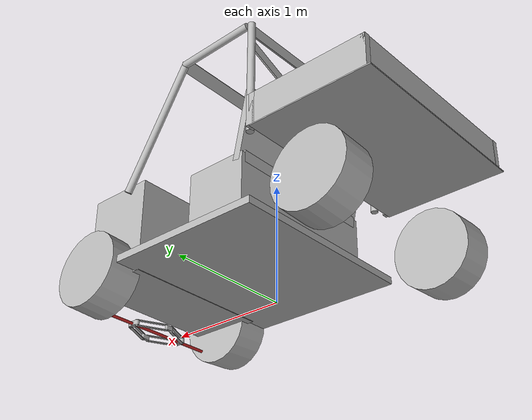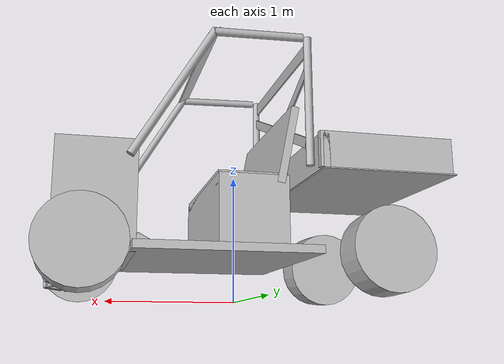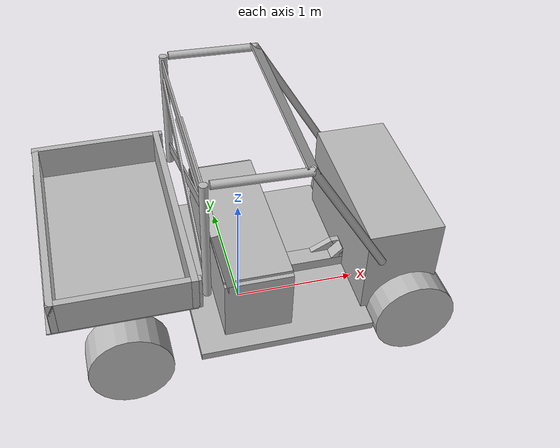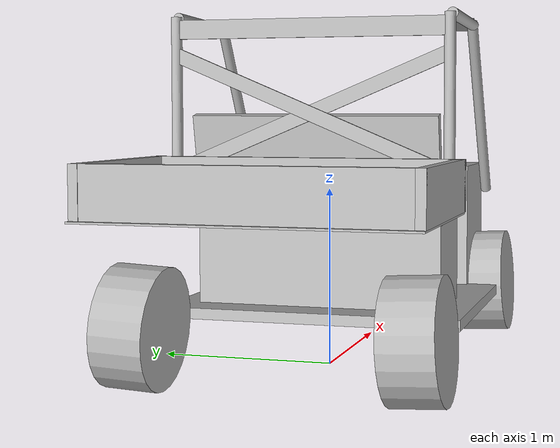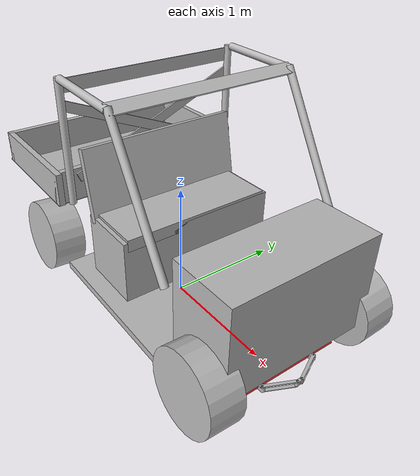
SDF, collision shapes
<?xml version="1.0" ?>
<sdf version="1.7">
  <model name="robot_manipulator">

    <include>
      <uri>model://gripper</uri>
      <pose>1.3 0 0.1 0 0 0</pose>
    </include>

    <include>
      <uri>model://rover</uri>
      <pose>0 0 0 0 0 0</pose>
    </include>

    <joint name="arm_gripper_joint" type="fixed">
      <parent>rover_base::chassis</parent>
      <child>simple_gripper::riser</child>
    </joint>

  </model>
</sdf>

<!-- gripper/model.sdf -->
<sdf version="1.6">
  <model name='gripper'>
    <static>False</static>
    <link name='left_long_joint'>
      <pose>0 0.25 0.019 -1.57 0 0</pose>
      <inertial>
        <pose>-0.000104 -0.000077 -0.0 0 0 0</pose>
        <mass>0.3186</mass>
        <inertia>
          <ixx>7.938e-05</ixx>
          <ixy>0</ixy>
          <ixz>0</ixz>
          <iyy>3.3715e-04</iyy>
          <iyz>0</iyz>
          <izz>3.3664e-04</izz>
        </inertia>
      </inertial>
      <collision name="collision">
        <geometry>
          <mesh>
            <uri>model://gripper/meshes/joint_long.dae</uri>
            <scale>1 1 1</scale>
          </mesh>
        </geometry>
        <surface>
          <contact>
            <collide_bitmask>0xffff</collide_bitmask>
          </contact>
          <friction>
            <ode>
              <mu>100</mu>
              <mu2>50</mu2>
            </ode>
          </friction>
        </surface>
      </collision>
      <visual name='visual'>
        <geometry>
          <mesh>
            <uri>model://gripper/meshes/joint_long.dae</uri>
            <scale>1 1 1</scale>
          </mesh>
        </geometry>
      </visual>
    </link>
    <link name='right_long_joint'>
      <pose>0 -0.25 0.019 -1.57 0 0</pose>
      <collision name="collision">
        <geometry>
          <mesh>
            <uri>model://gripper/meshes/joint_long.dae</uri>
            <scale>1 1 1</scale>
          </mesh>
        </geometry>
        <surface>
          <contact>
            <collide_bitmask>0xffff</collide_bitmask>
          </contact>
          <friction>
            <ode>
              <mu>100</mu>
              <mu2>50</mu2>
            </ode>
          </friction>
        </surface>
      </collision>
      <visual name='visual'>
        <geometry>
          <mesh>
            <uri>model://gripper/meshes/joint_long.dae</uri>
            <scale>1 1 1</scale>
          </mesh>
        </geometry>
      </visual>
      <inertial>
        <pose>-0.000104 -0.000077 -0.0 0 0 0</pose>
        <mass>0.3186</mass>
        <inertia>
          <ixx>7.938e-05</ixx>
          <ixy>0</ixy>
          <ixz>0</ixz>
          <iyy>3.3715e-04</iyy>
          <iyz>0</iyz>
          <izz>3.3664e-04</izz>
        </inertia>
      </inertial>
    </link>
    <link name='left_short_joint'>
      <pose>0.14 0 0 1.57 0 1.57</pose>
      <collision name="collision">
        <geometry>
          <mesh>
            <uri>model://gripper/meshes/joint_short.dae</uri>
            <scale>1 1 1</scale>
          </mesh>
        </geometry>
        <surface>
          <contact>
            <collide_bitmask>0xffff</collide_bitmask>
          </contact>
          <friction>
            <ode>
              <mu>100</mu>
              <mu2>50</mu2>
            </ode>
          </friction>
        </surface>
      </collision>
      <visual name='visual'>
        <geometry>
          <mesh>
            <uri>model://gripper/meshes/joint_short.dae</uri>
            <scale>1 1 1</scale>
          </mesh>
        </geometry>
      </visual>
      <inertial>
        <pose>0.0 0.01896 -0.000157 0 0 0</pose>
        <mass>0.1512</mass>
        <inertia>
          <ixx>2.689e-05</ixx>
          <ixy>-0</ixy>
          <ixz>-0</ixz>
          <iyy>6.696e-05</iyy>
          <iyz>0</iyz>
          <izz>7.741e-05</izz>
        </inertia>
      </inertial>
    </link>
    <link name='right_short_joint'>
      <pose>-0.14 0 0 1.57 0 1.57</pose>
      <collision name="collision">
        <geometry>
          <mesh>
            <uri>model://gripper/meshes/joint_short.dae</uri>
            <scale>1 1 1</scale>
          </mesh>
        </geometry>
        <surface>
          <contact>
            <collide_bitmask>0xffff</collide_bitmask>
          </contact>
          <friction>
            <ode>
              <mu>100</mu>
              <mu2>50</mu2>
            </ode>
          </friction>
        </surface>
      </collision>
      <visual name='visual'>
        <geometry>
          <mesh>
            <uri>model://gripper/meshes/joint_short.dae</uri>
            <scale>1 1 1</scale>
          </mesh>
        </geometry>
      </visual>
      <inertial>
        <pose>0.0 0.01896 -0.000157 0 0 0</pose>
        <mass>0.1512</mass>
        <inertia>
          <ixx>2.689e-05</ixx>
          <ixy>-0</ixy>
          <ixz>-0</ixz>
          <iyy>6.696e-05</iyy>
          <iyz>0</iyz>
          <izz>7.741e-05</izz>
        </inertia>
      </inertial>
    </link>
    <link name='flat_plate1'>
      <pose>0.0456 0.2565 0.038 1.57 0 -1.132</pose>
      <collision name="collision">
        <geometry>
          <mesh>
            <uri>model://gripper/meshes/flat_plate.dae</uri>
            <scale>1 1 1</scale>
          </mesh>
        </geometry>
        <surface>
          <contact>
            <collide_bitmask>0xffff</collide_bitmask>
          </contact>
          <friction>
            <ode>
              <mu>100</mu>
              <mu2>50</mu2>
            </ode>
          </friction>
        </surface>
      </collision>
      <visual name='visual'>
        <geometry>
          <mesh>
            <uri>model://gripper/meshes/flat_plate.dae</uri>
            <scale>1 1 1</scale>
          </mesh>
        </geometry>
      </visual>
      <inertial>
        <pose>0.125 0.00325 0.012500 0 0 0</pose>
        <mass>0.0651</mass>
        <inertia>
          <ixx>3.689e-06</ixx>
          <ixy>-0</ixy>
          <ixz>-0</ixz>
          <iyy>3.797e-04</iyy>
          <iyz>0</iyz>
          <izz>3.764e-04</izz>
        </inertia>
      </inertial>
    </link>
    <link name='flat_plate2'>
      <pose>-0.1289 -0.02 0.038 1.57 0 -1.132</pose>
      <collision name="collision">
        <geometry>
          <mesh>
            <uri>model://gripper/meshes/flat_plate.dae</uri>
            <scale>1 1 1</scale>
          </mesh>
        </geometry>
        <surface>
          <contact>
            <collide_bitmask>0xffff</collide_bitmask>
          </contact>
          <friction>
            <ode>
              <mu>100</mu>
              <mu2>50</mu2>
            </ode>
          </friction>
        </surface>
      </collision>
      <visual name='visual'>
        <geometry>
          <mesh>
            <uri>model://gripper/meshes/flat_plate.dae</uri>
            <scale>1 1 1</scale>
          </mesh>
        </geometry>
      </visual>
      <inertial>
        <pose>0.125 0.00325 0.012500 0 0 0</pose>
        <mass>0.0651</mass>
        <inertia>
          <ixx>3.689e-06</ixx>
          <ixy>-0</ixy>
          <ixz>-0</ixz>
          <iyy>3.797e-04</iyy>
          <iyz>0</iyz>
          <izz>3.764e-04</izz>
        </inertia>
      </inertial>
    </link>
    <link name='flat_plate3'>
      <pose>-0.1515 0.031 0.038 1.57 0 1.132</pose>
      <collision name="collision">
        <geometry>
          <mesh>
            <uri>model://gripper/meshes/flat_plate.dae</uri>
            <scale>1 1 1</scale>
          </mesh>
        </geometry>
        <surface>
          <contact>
            <collide_bitmask>0xffff</collide_bitmask>
          </contact>
          <friction>
            <ode>
              <mu>100</mu>
              <mu2>50</mu2>
            </ode>
          </friction>
        </surface>
      </collision>
      <visual name='visual'>
        <geometry>
          <mesh>
            <uri>model://gripper/meshes/flat_plate.dae</uri>
            <scale>1 1 1</scale>
          </mesh>
        </geometry>
      </visual>
      <inertial>
        <pose>0.125 0.00325 0.012500 0 0 0</pose>
        <mass>0.0651</mass>
        <inertia>
          <ixx>3.689e-06</ixx>
          <ixy>-0</ixy>
          <ixz>-0</ixz>
          <iyy>3.797e-04</iyy>
          <iyz>0</iyz>
          <izz>3.764e-04</izz>
        </inertia>
      </inertial>
    </link>
    <link name='flat_plate4'>
      <pose>0.022 -0.245 0.038 1.57 0 1.132</pose>
      <collision name="collision">
        <geometry>
          <mesh>
            <uri>model://gripper/meshes/flat_plate.dae</uri>
            <scale>1 1 1</scale>
          </mesh>
        </geometry>
        <surface>
          <contact>
            <collide_bitmask>0xffff</collide_bitmask>
          </contact>
          <friction>
            <ode>
              <mu>100</mu>
              <mu2>50</mu2>
            </ode>
          </friction>
        </surface>
      </collision>
      <visual name='visual'>
        <geometry>
          <mesh>
            <uri>model://gripper/meshes/flat_plate.dae</uri>
            <scale>1 1 1</scale>
          </mesh>
        </geometry>
      </visual>
      <inertial>
        <pose>0.125 0.00325 0.012500 0 0 0</pose>
        <mass>0.0651</mass>
        <inertia>
          <ixx>3.689e-06</ixx>
          <ixy>-0</ixy>
          <ixz>-0</ixz>
          <iyy>3.797e-04</iyy>
          <iyz>0</iyz>
          <izz>3.764e-04</izz>
        </inertia>
      </inertial>
    </link>

    <link name='flat_plate5'>
      <pose>0.0456 0.2565 -0.007 1.57 0 -1.132</pose>
      <collision name="collision">
        <geometry>
          <mesh>
            <uri>model://gripper/meshes/flat_plate.dae</uri>
            <scale>1 1 1</scale>
          </mesh>
        </geometry>
        <surface>
          <contact>
            <collide_bitmask>0xffff</collide_bitmask>
          </contact>
          <friction>
            <ode>
              <mu>100</mu>
              <mu2>50</mu2>
            </ode>
          </friction>
        </surface>
      </collision>
      <visual name='visual'>
        <geometry>
          <mesh>
            <uri>model://gripper/meshes/flat_plate.dae</uri>
            <scale>1 1 1</scale>
          </mesh>
        </geometry>
      </visual>
      <inertial>
        <pose>0.125 0.00325 0.012500 0 0 0</pose>
        <mass>0.0651</mass>
        <inertia>
          <ixx>3.689e-06</ixx>
          <ixy>-0</ixy>
          <ixz>-0</ixz>
          <iyy>3.797e-04</iyy>
          <iyz>0</iyz>
          <izz>3.764e-04</izz>
        </inertia>
      </inertial>
    </link>
    <link name='flat_plate6'>
      <pose>-0.1289 -0.02 -0.007 1.57 0 -1.132</pose>
      <collision name="collision">
        <geometry>
          <mesh>
            <uri>model://gripper/meshes/flat_plate.dae</uri>
            <scale>1 1 1</scale>
          </mesh>
        </geometry>
        <surface>
          <contact>
            <collide_bitmask>0xffff</collide_bitmask>
          </contact>
          <friction>
            <ode>
              <mu>100</mu>
              <mu2>50</mu2>
            </ode>
          </friction>
        </surface>
      </collision>
      <visual name='visual'>
        <geometry>
          <mesh>
            <uri>model://gripper/meshes/flat_plate.dae</uri>
            <scale>1 1 1</scale>
          </mesh>
        </geometry>
      </visual>
      <inertial>
        <pose>0.125 0.00325 0.012500 0 0 0</pose>
        <mass>0.0651</mass>
        <inertia>
          <ixx>3.689e-06</ixx>
          <ixy>-0</ixy>
          <ixz>-0</ixz>
          <iyy>3.797e-04</iyy>
          <iyz>0</iyz>
          <izz>3.764e-04</izz>
        </inertia>
      </inertial>
    </link>
    <link name='flat_plate7'>
      <pose>-0.1515 0.031 -0.007 1.57 0 1.132</pose>
      <collision name="collision">
        <geometry>
          <mesh>
            <uri>model://gripper/meshes/flat_plate.dae</uri>
            <scale>1 1 1</scale>
          </mesh>
        </geometry>
        <surface>
          <contact>
            <collide_bitmask>0xffff</collide_bitmask>
          </contact>
          <friction>
            <ode>
              <mu>100</mu>
              <mu2>50</mu2>
            </ode>
          </friction>
        </surface>
      </collision>
      <visual name='visual'>
        <geometry>
          <mesh>
            <uri>model://gripper/meshes/flat_plate.dae</uri>
            <scale>1 1 1</scale>
          </mesh>
        </geometry>
      </visual>
      <inertial>
        <pose>0.125 0.00325 0.012500 0 0 0</pose>
        <mass>0.0651</mass>
        <inertia>
          <ixx>3.689e-06</ixx>
          <ixy>-0</ixy>
          <ixz>-0</ixz>
          <iyy>3.797e-04</iyy>
          <iyz>0</iyz>
          <izz>3.764e-04</izz>
        </inertia>
      </inertial>
    </link>
    <link name='flat_plate8'>
      <pose>0.022 -0.245 -0.007 1.57 0 1.132</pose>
      <collision name="collision">
        <geometry>
          <mesh>
            <uri>model://gripper/meshes/flat_plate.dae</uri>
            <scale>1 1 1</scale>
          </mesh>
        </geometry>
        <surface>
          <contact>
            <collide_bitmask>0xffff</collide_bitmask>
          </contact>
          <friction>
            <ode>
              <mu>100</mu>
              <mu2>50</mu2>
            </ode>
          </friction>
        </surface>
      </collision>
      <visual name='visual'>
        <geometry>
          <mesh>
            <uri>model://gripper/meshes/flat_plate.dae</uri>
            <scale>1 1 1</scale>
          </mesh>
        </geometry>
      </visual>
      <inertial>
        <pose>0.125 0.00325 0.012500 0 0 0</pose>
        <mass>0.0651</mass>
        <inertia>
          <ixx>3.689e-06</ixx>
          <ixy>-0</ixy>
          <ixz>-0</ixz>
          <iyy>3.797e-04</iyy>
          <iyz>0</iyz>
          <izz>3.764e-04</izz>
        </inertia>
      </inertial>
    </link>

    <link name='screw_rod'>
      <pose>-0.00015 -0.02 0.0153 0 1.57 1.57 </pose>
      <collision name="collision">
        <geometry>
          <cylinder>
            <radius>0.012</radius>
            <length>1</length>
          </cylinder>
        </geometry>
      </collision>
      <visual name="visual">
        <material>
          <script>
            <name>Gazebo/Red</name>
            <uri>file://media/materials/scripts/gazebo.material</uri>
          </script>
          <shader type='pixel'/>
        </material>
        <geometry>
          <cylinder>
            <radius>0.012</radius>
            <length>0.7</length>
          </cylinder>
        </geometry>
      </visual>
      <inertial>
        <pose>0 0 0.32263 0 1.57 0</pose>
        <mass>1.29</mass>
        <inertia>
          <ixx>1.8357e-04</ixx>
          <ixy>-0</ixy>
          <ixz>-0</ixz>
          <iyy>8.006e-02</iyy>
          <iyz>0</iyz>
          <izz>8.006e-02</izz>
        </inertia>
      </inertial>
    </link>

    <joint name="j1" type="revolute">
      <pose> 0.25 0 0.01 0 0 0</pose>
      <child>flat_plate1</child>
      <parent>left_short_joint</parent>
      <axis>
        <limit>
          <lower>-0.5</lower>
          <upper>0.1</upper>
        </limit>
        <xyz>0 1 0</xyz>
      </axis>
    </joint>
    <joint name="j2" type="revolute">
      <pose> 0 0 0.01 0 0 0</pose>
      <child>flat_plate1</child>
      <parent>left_long_joint</parent>
      <axis>
        <limit>
          <lower>-0.5</lower>
          <upper>0.1</upper>
        </limit>
        <xyz>0 1 0</xyz>
      </axis>
    </joint>
    <joint name="j3" type="revolute">
      <pose> 0 0 0.01 0 0 0</pose>
      <child>flat_plate2</child>
      <parent>right_short_joint</parent>
      <axis>
        <limit>
          <lower>-0.5</lower>
          <upper>0.1</upper>
        </limit>
        <xyz>0 1 0</xyz>
      </axis>
    </joint>
    <joint name="j4" type="revolute">
      <pose> 0.25 0 0.01 0 0 0</pose>
      <child>flat_plate2</child>
      <parent>right_long_joint</parent>
      <axis>
        <limit>
          <lower>-0.5</lower>
          <upper>0.1</upper>
        </limit>
        <xyz>0 1 0</xyz>
      </axis>
    </joint>
    <joint name="j5" type="revolute">
      <pose> 0 0 0.01 0 0 0</pose>
      <child>flat_plate3</child>
      <parent>right_short_joint</parent>
      <axis>
        <limit>
          <lower>-0.5</lower>
          <upper>0.1</upper>
        </limit>
        <xyz>0 1 0</xyz>
      </axis>
    </joint>
    <joint name="j6" type="revolute">
      <pose> 0.25 0 0.01 0 0 0</pose>
      <child>flat_plate3</child>
      <parent>left_long_joint</parent>
      <axis>
        <limit>
          <lower>-0.5</lower>
          <upper>0.1</upper>
        </limit>
        <xyz>0 1 0</xyz>
      </axis>
    </joint>
    <joint name="j7" type="revolute">
      <pose> 0.25 0 0.01 0 0 0</pose>
      <child>flat_plate4</child>
      <parent>left_short_joint</parent>
      <axis>
        <limit>
          <lower>-0.5</lower>
          <upper>0.1</upper>
        </limit>
        <xyz>0 1 0</xyz>
      </axis>
    </joint>
    <joint name="j8" type="revolute">
      <pose> 0 0 0.01 0 0 0</pose>
      <child>flat_plate4</child>
      <parent>right_long_joint</parent>
      <axis>
        <limit>
          <lower>-0.5</lower>
          <upper>0.1</upper>
        </limit>
        <xyz>0 1 0</xyz>
      </axis>
    </joint>

    <joint name="j9" type="revolute">
      <pose> 0.25 0 0.01 0 0 0</pose>
      <child>flat_plate5</child>
      <parent>left_short_joint</parent>
      <axis>
        <limit>
          <lower>-0.5</lower>
          <upper>0.1</upper>
        </limit>
        <xyz>0 -1 0</xyz>
      </axis>
    </joint>
    <joint name="j10" type="revolute">
      <pose> 0 0 0.01 0 0 0</pose>
      <child>flat_plate5</child>
      <parent>left_long_joint</parent>
      <axis>
        <limit>
          <lower>-0.5</lower>
          <upper>0.1</upper>
        </limit>
        <xyz>0 -1 0</xyz>
      </axis>
    </joint>
    <joint name="j11" type="revolute">
      <pose> 0 0 0.01 0 0 0</pose>
      <child>flat_plate6</child>
      <parent>right_short_joint</parent>
      <axis>
        <limit>
          <lower>-0.5</lower>
          <upper>0.1</upper>
        </limit>
        <xyz>0 -1 0</xyz>
      </axis>
    </joint>
    <joint name="j12" type="revolute">
      <pose> 0.25 0 0.01 0 0 0</pose>
      <child>flat_plate6</child>
      <parent>right_long_joint</parent>
      <axis>
        <limit>
          <lower>-0.5</lower>
          <upper>0.1</upper>
        </limit>
        <xyz>0 -1 0</xyz>
      </axis>
    </joint>
    <joint name="j13" type="revolute">
      <pose> 0 0 0.01 0 0 0</pose>
      <child>flat_plate7</child>
      <parent>right_short_joint</parent>
      <axis>
        <limit>
          <lower>-0.5</lower>
          <upper>0.1</upper>
        </limit>
        <xyz>0 -1 0</xyz>
      </axis>
    </joint>
    <joint name="j14" type="revolute">
      <pose> 0.25 0 0.01 0 0 0</pose>
      <child>flat_plate7</child>
      <parent>left_long_joint</parent>
      <axis>
        <limit>
          <lower>-0.5</lower>
          <upper>0.1</upper>
        </limit>
        <xyz>0 -1 0</xyz>
      </axis>
    </joint>
    <joint name="j15" type="revolute">
      <pose> 0.25 0 0.01 0 0 0</pose>
      <child>flat_plate8</child>
      <parent>left_short_joint</parent>
      <axis>
        <limit>
          <lower>-0.5</lower>
          <upper>0.1</upper>
        </limit>
        <xyz>0 -1 0</xyz>
      </axis>
    </joint>
    <joint name="j16" type="revolute">
      <pose> 0 0 0.01 0 0 0</pose>
      <child>flat_plate8</child>
      <parent>right_long_joint</parent>
      <axis>
        <limit>
          <lower>-0.5</lower>
          <upper>0.1</upper>
        </limit>
        <xyz>0 -1 0</xyz>
      </axis>
    </joint>
    <joint name="piston_joint_1" type ="screw">
      <pose>0 0.004 0 0 0 0</pose>
      <parent>screw_rod</parent>
      <child>right_long_joint</child>
      <axis>
        <xyz>0 1 0</xyz>
      </axis>
      <thread_pitch>100</thread_pitch>
    </joint>

    <joint name="piston_joint_2" type ="screw">
      <pose>0 0.004 0 0 0 0</pose>
      <parent>screw_rod</parent>
      <child>left_long_joint</child>
      <axis>
        <xyz>0 1 0</xyz>
      </axis>
      <thread_pitch>-100</thread_pitch>
    </joint>

    <plugin name="gripper_plugin" filename="libiarc_gripper_plugin.so">
      <namespace>firefly</namespace>
      <link_name>screw_rod</link_name>
      <torque_magnitude>1.5</torque_magnitude>
    </plugin>
  </model>
</sdf>

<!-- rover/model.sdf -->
<sdf version="1.5">
  <model name="rover">
    <static>false</static>
    <link name="base_link">
      <inertial>
        <!-- subtracted wheel weights from dry weight of 771 kg -->
        <!-- http://www.polaris.com/en-us/ranger-utv/side-by-sides/ranger-ev/specifications -->
        <mass>720.0</mass>
        <inertia>
          <ixx>140</ixx>
          <ixy>0.0</ixy>
          <iyy>550</iyy>
          <ixz>0.0</ixz>
          <iyz>0.0</iyz>
          <izz>550</izz>
        </inertia>
        <!-- chassis c.o.g. near lateral/longitudinal center, height of 0.4 m -->
        <pose>0.1 0 0.4 0 0 0</pose>
      </inertial>
      <visual name="visual">
        <pose>0 0 0 0 0 -1.570796</pose>
        <geometry>
          <mesh>
            <uri>model://rover/meshes/polaris.dae</uri>
            <submesh>
              <name>Body</name>
              <center>false</center>
            </submesh>
          </mesh>
        </geometry>
        <material>
          <script>
            <uri>model://rover/materials/scripts</uri>
            <uri>model://rover/materials/textures</uri>
            <name>PolarisXP900/Diffuse</name>
          </script>
        </material>
      </visual>
      <collision name="base_link_bottom">
        <pose>0.2 0.0 0.335 0 0 0</pose>
        <geometry>
          <box>
            <size>1.34 1.65746 0.06</size>
          </box>
        </geometry>
      </collision>
      <collision name="cargo_bottom">
        <pose>-1.0 0.0 0.921 0.0 0.0 0.0</pose>
        <geometry>
          <box>
            <size>1.04609 1.6998 0.01</size>
          </box>
        </geometry>
      </collision>
      <collision name="cargo_front">
        <pose>-0.495 0.0 1.06 0.0 0.0 0.0</pose>
        <geometry>
          <box>
            <size>0.05 1.69982 0.27</size>
          </box>
        </geometry>
      </collision>
      <collision name="cargo_back">
        <pose>-1.465 0.0 1.06 0.0 0.0 0.0</pose>
        <geometry>
          <box>
            <size>0.05 1.69982 0.27</size>
          </box>
        </geometry>
      </collision>
      <collision name="cargo_left">
        <pose>-0.97 0.82491 1.06 0.0 0.0 0.0</pose>
        <geometry>
          <box>
            <size>1.04609 0.05 0.27</size>
          </box>
        </geometry>
      </collision>
      <collision name="cargo_right">
        <pose>-0.97 -0.82491 1.06 0.0 0.0 0.0</pose>
        <geometry>
          <box>
            <size>1.04609 0.05 0.27</size>
          </box>
        </geometry>
      </collision>
      <collision name="seat">
        <pose>0.0 0.0 0.62 0 0 0</pose>
        <geometry>
          <box>
            <size>0.52167 1.37206 0.53369</size>
          </box>
        </geometry>
        <surface>
          <contact>
            <ode>
              <min_depth>0.01</min_depth>
            </ode>
          </contact>
        </surface>
      </collision>
      <collision name="mud_seat">
        <pose>0.0 0.0 0.86 0 0 0</pose>
        <geometry>
          <box>
            <size>0.52167 1.30 0.1</size>
          </box>
        </geometry>
        <surface>
          <contact>
            <collide_without_contact>true</collide_without_contact>
          </contact>
        </surface>
      </collision>
      <sensor name="seat_contact" type="contact">
        <always_on>true</always_on>
        <update_rate>1000</update_rate>
        <contact>
          <collision>mud_seat</collision>
        </contact>
      </sensor>
      <collision name="seat_back">
        <pose>-0.26 0.0 1.125 0.0 -0.2 0.0</pose>
        <geometry>
          <box>
            <size>0.06 1.37206 0.6</size>
          </box>
        </geometry>
      </collision>
      <collision name="engine">
        <pose>1.12 0.0 0.7 0.0 0.0 0.0</pose>
        <geometry>
          <box>
            <size>0.58 1.3 0.8</size>
          </box>
        </geometry>
      </collision>
      <collision name="rollcage_top_left">
        <pose>-0.02 0.76 1.936 0 1.60 0</pose>
        <geometry>
          <cylinder>
            <radius>0.03</radius>
            <length>0.68</length>
          </cylinder>
        </geometry>
      </collision>
      <collision name="rollcage_top_right">
        <pose>-0.02 -0.76 1.936 0 1.60 0</pose>
        <geometry>
          <cylinder>
            <radius>0.03</radius>
            <length>0.68</length>
          </cylinder>
        </geometry>
      </collision>
      <collision name="rollcage_top_front">
        <pose>0.315 0.0 1.93 0 -1.0 0</pose>
        <geometry>
          <box>
            <size>0.01299 1.54 0.10226</size>
          </box>
        </geometry>
      </collision>
      <collision name="rollcage_top_back">
        <pose>-0.410 0.0 1.88 0 0 0</pose>
        <geometry>
          <box>
            <size>0.01299 1.54 0.10226</size>
          </box>
        </geometry>
      </collision>
      <collision name="rollcage_front_left">
        <pose>0.602 0.755 1.45 0 -0.54 0</pose>
        <geometry>
          <cylinder>
            <radius>0.03</radius>
            <length>1.15</length>
          </cylinder>
        </geometry>
      </collision>
      <collision name="rollcage_front_right">
        <pose>0.602 -0.755 1.45 0 -0.54 0</pose>
        <geometry>
          <cylinder>
            <radius>0.03</radius>
            <length>1.15</length>
          </cylinder>
        </geometry>
      </collision>
      <collision name="rollcage_back_left">
        <pose>-0.4 0.755 1.45 0 0 0</pose>
        <geometry>
          <cylinder>
            <radius>0.03</radius>
            <length>1.00</length>
          </cylinder>
        </geometry>
      </collision>
      <collision name="rollcage_back_right">
        <pose>-0.4 -0.755 1.45 0 0 0</pose>
        <geometry>
          <cylinder>
            <radius>0.03</radius>
            <length>1.00</length>
          </cylinder>
        </geometry>
      </collision>
      <collision name="rollcage_X_1">
        <pose>-0.411 0.04 1.445 0.397 0 0</pose>
        <geometry>
          <box>
            <size>0.01392 1.557245 0.078</size>
          </box>
        </geometry>
      </collision>
      <collision name="rollcage_X_2">
        <pose>-0.40 -0.04 1.445 -0.397 0 0</pose>
        <geometry>
          <box>
            <size>0.01392 1.557245 0.078</size>
          </box>
        </geometry>
      </collision>
      <collision name="central_hump1_collision">
        <pose>0.55 -0.1 0.4 0 0 0</pose>
        <geometry>
          <box>
            <size>0.6 0.15 0.1</size>
          </box>
        </geometry>
      </collision>
      <collision name="central_hump2_collision">
        <pose>0.7 -0.05 0.45 0 -0.5 0</pose>
        <geometry>
          <box>
            <size>0.20 0.05 0.1</size>
          </box>
        </geometry>
      </collision>
      <collision name="central_hump3_collision">
        <pose>0.798 -0.125 0.478 0 -0.8 0</pose>
        <geometry>
          <box>
            <size>0.129 0.1 0.05</size>
          </box>
        </geometry>
      </collision>
      <collision name="central_hump4_collision">
        <pose>0.8135 -0.05 0.45 0 0 0</pose>
        <geometry>
          <box>
            <size>0.10 0.05 0.1835</size>
          </box>
        </geometry>
      </collision>
      <collision name="central_hump5_collision">
        <pose>0.84 -0.125 0.45 0 0 0</pose>
        <geometry>
          <box>
            <size>0.03 0.1 0.1835</size>
          </box>
        </geometry>
      </collision>
      <collision name="central_hump6_collision">
        <pose>0.82 -0.125 0.475 0 0 0</pose>
        <geometry>
          <box>
            <size>0.03 0.1 0.05</size>
          </box>
        </geometry>
      </collision>
      <visual name="cargo_visual">
        <pose>-1.0 0 1.03230 0 0 -1.5707</pose>
        <geometry>
          <mesh>
            <uri>model://rover/meshes/polaris.dae</uri>
            <submesh>
              <name>Bed</name>
              <center>true</center>
            </submesh>
          </mesh>
        </geometry>
        <material>
          <script>
            <uri>model://rover/materials/scripts</uri>
            <uri>model://rover/materials/textures</uri>
            <name>PolarisXP900/Diffuse</name>
          </script>
        </material>
      </visual>
      <visual name="tailgate_visual">
        <pose>-1.492 0 1.03 0 0 -1.5707</pose>
        <geometry>
          <mesh>
            <uri>model://rover/meshes/polaris.dae</uri>
            <submesh>
              <name>Tail_Gate</name>
              <center>true</center>
            </submesh>
          </mesh>
        </geometry>
        <material>
          <script>
            <uri>model://rover/materials/scripts</uri>
            <uri>model://rover/materials/textures</uri>
            <name>PolarisXP900/Diffuse</name>
          </script>
        </material>
      </visual>
      <visual name="front_left_brake_visual">
        <pose>1.12 -0.57488 0.35516 3.1415 0 1.5707</pose>
        <geometry>
          <mesh>
            <uri>model://rover/meshes/polaris.dae</uri>
            <submesh>
              <name>Brake_Front_Left</name>
              <center>true</center>
            </submesh>
          </mesh>
        </geometry>
        <material>
          <script>
            <uri>model://rover/materials/scripts</uri>
            <uri>model://rover/materials/textures</uri>
            <name>PolarisXP900/Diffuse</name>
          </script>
        </material>
      </visual>
      <visual name="front_right_brake_visual">
        <pose>1.12 0.57488 0.35516 3.1415 0 1.5707</pose>
        <geometry>
          <mesh>
            <uri>model://rover/meshes/polaris.dae</uri>
            <submesh>
              <name>Brake_Front_Right</name>
              <center>true</center>
            </submesh>
          </mesh>
        </geometry>
        <material>
          <script>
            <uri>model://rover/materials/scripts</uri>
            <uri>model://rover/materials/textures</uri>
            <name>PolarisXP900/Diffuse</name>
          </script>
        </material>
      </visual>
      <visual name="central_hump1">
        <pose>0.55 -0.1 0.4 0 0 0</pose>
        <geometry>
          <box>
            <size>0.6 0.15 0.1</size>
          </box>
        </geometry>
        <material>
          <script>
            <uri>file://media/materials/scripts/gazebo.material</uri>
            <name>Gazebo/DarkGrey</name>
          </script>
        </material>
      </visual>
      <visual name="central_hump2">
        <pose>0.7 -0.05 0.45 0 -0.5 0</pose>
        <geometry>
          <box>
            <size>0.20 0.05 0.1</size>
          </box>
        </geometry>
        <material>
          <script>
            <uri>file://media/materials/scripts/gazebo.material</uri>
            <name>Gazebo/DarkGrey</name>
          </script>
        </material>
      </visual>
      <visual name="central_hump3">
        <pose>0.798 -0.125 0.478 0 -0.8 0</pose>
        <geometry>
          <box>
            <size>0.129 0.1 0.05</size>
          </box>
        </geometry>
        <material>
          <script>
            <uri>file://media/materials/scripts/gazebo.material</uri>
            <name>Gazebo/DarkGrey</name>
          </script>
        </material>
      </visual>
      <visual name="central_hump4">
        <pose>0.8135 -0.05 0.45 0 0 0</pose>
        <geometry>
          <box>
            <size>0.10 0.05 0.1835</size>
          </box>
        </geometry>
        <material>
          <script>
            <uri>file://media/materials/scripts/gazebo.material</uri>
            <name>Gazebo/DarkGrey</name>
          </script>
        </material>
      </visual>
      <visual name="central_hump5">
        <pose>0.84 -0.125 0.45 0 0 0</pose>
        <geometry>
          <box>
            <size>0.03 0.1 0.1835</size>
          </box>
        </geometry>
        <material>
          <script>
            <uri>file://media/materials/scripts/gazebo.material</uri>
            <name>Gazebo/DarkGrey</name>
          </script>
        </material>
      </visual>
      <visual name="central_hump6">
        <pose>0.82 -0.125 0.475 0 0 0</pose>
        <geometry>
          <box>
            <size>0.03 0.1 0.05</size>
          </box>
        </geometry>
        <material>
          <script>
            <uri>file://media/materials/scripts/gazebo.material</uri>
            <name>Gazebo/DarkGrey</name>
          </script>
        </material>
      </visual>
    </link>
    <link name='rover/imu_link'>
      <pose>0 0 0 0 0 0</pose>
      <inertial>
        <pose>0 0 0 0 0 0</pose>
        <mass>0.015</mass>
        <inertia>
          <ixx>1e-05</ixx>
          <ixy>0</ixy>
          <ixz>0</ixz>
          <iyy>1e-05</iyy>
          <iyz>0</iyz>
          <izz>1e-05</izz>
        </inertia>
      </inertial>
    </link>
    <joint name='rover/imu_joint' type='revolute'>
      <child>rover/imu_link</child>
      <parent>base_link</parent>
      <axis>
        <xyz>1 0 0</xyz>
        <limit>
          <lower>0</lower>
          <upper>0</upper>
          <effort>0</effort>
          <velocity>0</velocity>
        </limit>
        <dynamics>
          <spring_reference>0</spring_reference>
          <spring_stiffness>0</spring_stiffness>
        </dynamics>
        <use_parent_model_frame>1</use_parent_model_frame>
      </axis>
    </joint>
    <link name="front_left_wheel">
      <pose>1.20223 0.71562 0.34697 -1.52 0.0 0.0</pose>
      <inertial>
        <mass>12</mass>
        <!-- estimated from http://www.rzrforums.net/wheels-tires/1729-tire-wheel-weights-most-sizes.html -->
        <inertia>
          <ixx>0.5</ixx>
          <ixy>0.0</ixy>
          <iyy>0.5</iyy>
          <ixz>0.0</ixz>
          <iyz>0.0</iyz>
          <izz>1.0</izz>
        </inertia>
      </inertial>
      <collision name="collision">
        <geometry>
          <cylinder>
            <radius>0.3175</radius>
            <length>0.2794</length>
          </cylinder>
        </geometry>
        <max_contacts>1</max_contacts>
        <surface>
          <friction>
            <ode>
              <mu>1.0</mu>
              <mu2>1.0</mu2>
              <fdir1>0 0 1</fdir1>
              <slip1>0.0</slip1>
              <slip2>0.0</slip2>
            </ode>
          </friction>
          <contact>
            <ode>
              <min_depth>0.005</min_depth>
              <kp>1e8</kp>
            </ode>
          </contact>
        </surface>
      </collision>
      <visual name="tire_visual">
        <pose>0 0 0 3.14159 1.570796 0</pose>
        <geometry>
          <mesh>
            <uri>model://rover/meshes/polaris.dae</uri>
            <scale>1.003700111 0.886200464 0.886200464</scale>
            <submesh>
              <name>Wheel_Front_Left</name>
              <center>true</center>
            </submesh>
          </mesh>
        </geometry>
        <material>
          <script>
            <uri>model://rover/materials/scripts</uri>
            <uri>model://rover/materials/textures</uri>
            <name>PolarisXP900/Diffuse</name>
          </script>
        </material>
      </visual>
    </link>
    <link name="front_right_wheel">
      <pose>1.20223 -0.71562 0.34697 1.52 0.0 0.0</pose>
      <inertial>
        <mass>12</mass>
        <!-- estimated from http://www.rzrforums.net/wheels-tires/1729-tire-wheel-weights-most-sizes.html -->
        <inertia>
          <ixx>0.5</ixx>
          <ixy>0.0</ixy>
          <iyy>0.5</iyy>
          <ixz>0.0</ixz>
          <iyz>0.0</iyz>
          <izz>1.0</izz>
        </inertia>
      </inertial>
      <collision name="collision">
        <geometry>
          <cylinder>
            <radius>0.3175</radius>
            <length>0.2794</length>
          </cylinder>
        </geometry>
        <max_contacts>1</max_contacts>
        <surface>
          <friction>
            <ode>
              <mu>1.0</mu>
              <mu2>1.0</mu2>
              <fdir1>0 0 1</fdir1>
              <slip1>0.0</slip1>
              <slip2>0.0</slip2>
            </ode>
          </friction>
          <contact>
            <ode>
              <min_depth>0.005</min_depth>
              <kp>1e8</kp>
            </ode>
          </contact>
        </surface>
      </collision>
      <visual name="visual">
        <pose>0 0 0 0 -1.570796 0</pose>
        <geometry>
          <mesh>
            <uri>model://rover/meshes/polaris.dae</uri>
            <scale>1.003700111 0.886200464 0.886200464</scale>
            <submesh>
              <name>Wheel_Front_Right</name>
              <center>true</center>
            </submesh>
          </mesh>
        </geometry>
        <material>
          <script>
            <uri>model://rover/materials/scripts</uri>
            <uri>model://rover/materials/textures</uri>
            <name>PolarisXP900/Diffuse</name>
          </script>
        </material>
      </visual>
    </link>
    <link name="rear_left_wheel">
      <pose>-0.99377 0.71562 0.34697 -1.52 0.0 0.0</pose>
      <inertial>
        <mass>12</mass>
        <!-- estimated from http://www.rzrforums.net/wheels-tires/1729-tire-wheel-weights-most-sizes.html -->
        <inertia>
          <ixx>0.5</ixx>
          <ixy>0.0</ixy>
          <iyy>0.5</iyy>
          <ixz>0.0</ixz>
          <iyz>0.0</iyz>
          <izz>1.0</izz>
        </inertia>
      </inertial>
      <collision name="collision">
        <geometry>
          <cylinder>
            <radius>0.3175</radius>
            <length>0.2794</length>
          </cylinder>
        </geometry>
        <max_contacts>1</max_contacts>
        <surface>
          <friction>
            <ode>
              <mu>1.0</mu>
              <mu2>1.0</mu2>
              <fdir1>0 0 1</fdir1>
              <slip1>0.0</slip1>
              <slip2>0.0</slip2>
            </ode>
          </friction>
          <contact>
            <ode>
              <min_depth>0.005</min_depth>
              <kp>1e8</kp>
            </ode>
          </contact>
        </surface>
      </collision>
      <visual name="visual">
        <pose>0 0 0 0 -1.570796 0</pose>
        <geometry>
          <mesh>
            <uri>model://rover/meshes/polaris.dae</uri>
            <scale>1.003700111 0.886200464 0.886200464</scale>
            <submesh>
              <name>Wheels_Rear_Left</name>
              <center>true</center>
            </submesh>
          </mesh>
        </geometry>
        <material>
          <script>
            <uri>model://rover/materials/scripts</uri>
            <uri>model://rover/materials/textures</uri>
            <name>PolarisXP900/Diffuse</name>
          </script>
        </material>
      </visual>
    </link>
    <link name="rear_right_wheel">
      <pose>-0.99377 -0.71562 0.34697 1.52 0.0 0.0</pose>
      <inertial>
        <mass>12</mass>
        <!-- estimated from http://www.rzrforums.net/wheels-tires/1729-tire-wheel-weights-most-sizes.html -->
        <inertia>
          <ixx>0.5</ixx>
          <ixy>0.0</ixy>
          <iyy>0.5</iyy>
          <ixz>0.0</ixz>
          <iyz>0.0</iyz>
          <izz>1.0</izz>
        </inertia>
      </inertial>
      <collision name="collision">
        <geometry>
          <cylinder>
            <radius>0.3175</radius>
            <length>0.2794</length>
          </cylinder>
        </geometry>
        <max_contacts>1</max_contacts>
        <surface>
          <friction>
            <ode>
              <mu>1.0</mu>
              <mu2>1.0</mu2>
              <fdir1>0 0 1</fdir1>
              <slip1>0.0</slip1>
              <slip2>0.0</slip2>
            </ode>
          </friction>
          <contact>
            <ode>
              <min_depth>0.005</min_depth>
              <kp>1e8</kp>
            </ode>
          </contact>
        </surface>
      </collision>
      <visual name="visual">
        <pose>0 0 0 0 -1.570796 0</pose>
        <geometry>
          <mesh>
            <uri>model://rover/meshes/polaris.dae</uri>
            <scale>1.003700111 0.886200464 0.886200464</scale>
            <submesh>
              <name>Wheels_Rear_Right</name>
              <center>true</center>
            </submesh>
          </mesh>
        </geometry>
        <material>
          <script>
            <uri>model://rover/materials/scripts</uri>
            <uri>model://rover/materials/textures</uri>
            <name>PolarisXP900/Diffuse</name>
          </script>
        </material>
      </visual>
    </link>
    <link name="front_right_wheel_steering_block">
      <pose>1.20223 -0.5 0.35515 1.570796 0.0 0.0</pose>
      <inertial>
        <mass>1</mass>
        <inertia>
          <ixx>0.01</ixx>
          <ixy>0.0</ixy>
          <iyy>0.01</iyy>
          <ixz>0.0</ixz>
          <iyz>0.0</iyz>
          <izz>0.01</izz>
        </inertia>
      </inertial>
      <collision name="collision">
        <geometry>
          <cylinder>
            <radius>0.05</radius>
            <length>0.01</length>
          </cylinder>
        </geometry>
      </collision>
    </link>
    <link name="front_left_wheel_steering_block">
      <pose>1.20223 0.5 0.35515 1.570796 0.0 0.0</pose>
      <inertial>
        <mass>1</mass>
        <inertia>
          <ixx>0.01</ixx>
          <ixy>0.0</ixy>
          <iyy>0.01</iyy>
          <ixz>0.0</ixz>
          <iyz>0.0</iyz>
          <izz>0.01</izz>
        </inertia>
      </inertial>
      <collision name="collision">
        <geometry>
          <cylinder>
            <radius>0.05</radius>
            <length>0.01</length>
          </cylinder>
        </geometry>
      </collision>
    </link>
    <joint type="revolute" name="front_left_steering_joint">
      <child>front_left_wheel_steering_block</child>
      <parent>base_link</parent>
      <axis>
        <xyz>0 0 1</xyz>
        <limit>
          <lower>-0.7727</lower>
          <upper>0.7727</upper>
        </limit>
        <dynamics>
          <damping>50.0</damping>
        </dynamics>
        <use_parent_model_frame>true</use_parent_model_frame>
      </axis>
      <physics>
        <ode>
          <cfm_damping>1</cfm_damping>
          <limit>
            <cfm>0.000000</cfm>
            <erp>0.900000</erp>
          </limit>
        </ode>
      </physics>
    </joint>
    <joint type="revolute" name="front_left_wheel_joint">
      <child>front_left_wheel</child>
      <parent>front_left_wheel_steering_block</parent>
      <axis>
        <xyz>0 1 0.05</xyz>
        <use_parent_model_frame>true</use_parent_model_frame>
      </axis>
    </joint>
    <joint type="revolute" name="front_right_steering_joint">
      <child>front_right_wheel_steering_block</child>
      <parent>base_link</parent>
      <axis>
        <xyz>0 0 1</xyz>
        <limit>
          <lower>-0.7727</lower>
          <upper>0.7727</upper>
        </limit>
        <dynamics>
          <damping>50.0</damping>
        </dynamics>
        <use_parent_model_frame>true</use_parent_model_frame>
      </axis>
      <physics>
        <ode>
          <cfm_damping>1</cfm_damping>
          <limit>
            <cfm>0.000000</cfm>
            <erp>0.900000</erp>
          </limit>
        </ode>
      </physics>
    </joint>
    <joint type="revolute" name="front_right_wheel_joint">
      <child>front_right_wheel</child>
      <parent>front_right_wheel_steering_block</parent>
      <axis>
        <xyz>0 1 -0.05</xyz>
        <use_parent_model_frame>true</use_parent_model_frame>
      </axis>
    </joint>
    <joint type="revolute" name="rear_left_wheel_joint">
      <child>rear_left_wheel</child>
      <parent>base_link</parent>
      <axis>
        <xyz>0 1 0.05</xyz>
        <use_parent_model_frame>true</use_parent_model_frame>
      </axis>
    </joint>
    <joint type="revolute" name="rear_right_wheel_joint">
      <pose>0.0 0.0 -0.1 0 0 0</pose>
      <child>rear_right_wheel</child>
      <parent>base_link</parent>
      <axis>
        <xyz>0 1 -0.05</xyz>
        <use_parent_model_frame>true</use_parent_model_frame>
      </axis>
    </joint>
    <plugin name='gazebo_imu_plugin' filename='libgazebo_imu_plugin.so'>
      <robotNamespace></robotNamespace>
      <linkName>rover/imu_link</linkName>
      <imuTopic>/imu</imuTopic>
      <gyroscopeNoiseDensity>0.0003394</gyroscopeNoiseDensity>
      <gyroscopeRandomWalk>3.8785e-05</gyroscopeRandomWalk>
      <gyroscopeBiasCorrelationTime>1000.0</gyroscopeBiasCorrelationTime>
      <gyroscopeTurnOnBiasSigma>0.0087</gyroscopeTurnOnBiasSigma>
      <accelerometerNoiseDensity>0.004</accelerometerNoiseDensity>
      <accelerometerRandomWalk>0.006</accelerometerRandomWalk>
      <accelerometerBiasCorrelationTime>300.0</accelerometerBiasCorrelationTime>
      <accelerometerTurnOnBiasSigma>0.196</accelerometerTurnOnBiasSigma>
    </plugin>
    <plugin name="gps_plugin" filename="libgazebo_gps_plugin.so">
	<robotNamespace></robotNamespace>
	<gpsNoise>true</gpsNoise>
    </plugin>
    <plugin name='magnetometer_plugin' filename='libgazebo_magnetometer_plugin.so'>
      <robotNamespace/>
      <pubRate>20</pubRate>
      <noiseDensity>0.0004</noiseDensity>
      <randomWalk>6.4e-06</randomWalk>
      <biasCorrelationTime>600</biasCorrelationTime>
      <magTopic>/mag</magTopic>
    </plugin>
    <plugin name='mavlink_interface' filename='libgazebo_mavlink_interface.so'>
      <robotNamespace></robotNamespace>
      <imuSubTopic>/imu</imuSubTopic>
      <gpsSubTopic>/gps</gpsSubTopic>
      <magSubTopic>/mag</magSubTopic>
      <mavlink_addr>INADDR_ANY</mavlink_addr>
      <mavlink_udp_port>14560</mavlink_udp_port>
      <serialEnabled>false</serialEnabled>
      <serialDevice>/dev/ttyACM0</serialDevice>
      <baudRate>921600</baudRate>
      <qgc_addr>INADDR_ANY</qgc_addr>
      <qgc_udp_port>14550</qgc_udp_port>
      <hil_mode>false</hil_mode>
      <hil_state_level>false</hil_state_level>
      <enable_lockstep>true</enable_lockstep>
      <use_tcp>true</use_tcp>
      <motorSpeedCommandPubTopic>/gazebo/command/motor_speed</motorSpeedCommandPubTopic>
      <control_channels>
        <channel name="rear_left_wheel_drive">
          <input_index>5</input_index>
          <input_offset>0</input_offset>
          <input_scaling>40</input_scaling>
          <zero_position_disarmed>0</zero_position_disarmed>
          <zero_position_armed>0</zero_position_armed>
          <joint_control_type>velocity</joint_control_type>
          <joint_name>rear_left_wheel_joint</joint_name>
          <joint_control_pid>
            <p>50</p>
            <i>20</i>
            <d>2</d>
            <iMax>800</iMax>
            <iMin>-800</iMin>
            <cmdMax>1200</cmdMax>
            <cmdMin>-1200</cmdMin>
          </joint_control_pid>
        </channel>
        <channel name="rear_right_wheel_drive">
          <input_index>6</input_index>
          <input_offset>0</input_offset>
          <input_scaling>40</input_scaling>
          <zero_position_disarmed>0</zero_position_disarmed>
          <zero_position_armed>0</zero_position_armed>
          <joint_control_type>velocity</joint_control_type>
          <joint_name>rear_right_wheel_joint</joint_name>
          <joint_control_pid>
            <p>50</p>
            <i>20</i>
            <d>2</d>
            <iMax>800</iMax>
            <iMin>-800</iMin>
            <cmdMax>1200</cmdMax>
            <cmdMin>-1200</cmdMin>
          </joint_control_pid>
        </channel>
        <channel name="left_wheel_steering">
          <input_index>0</input_index>
          <input_offset>0</input_offset>
          <input_scaling>-0.9</input_scaling>
          <zero_position_disarmed>0</zero_position_disarmed>
          <zero_position_armed>0</zero_position_armed>
          <joint_control_type>position</joint_control_type>
          <joint_name>front_left_steering_joint</joint_name>
          <joint_control_pid>
            <p>80</p>
            <i>40</i>
            <d>0.1</d>
            <iMax>40</iMax>
            <iMin>-40</iMin>
            <cmdMax>80</cmdMax>
            <cmdMin>-80</cmdMin>
          </joint_control_pid>
        </channel>
        <channel name="right_wheel_steering">
          <input_index>1</input_index>
          <input_offset>0</input_offset>
          <input_scaling>-0.9</input_scaling>
          <zero_position_disarmed>0</zero_position_disarmed>
          <zero_position_armed>0</zero_position_armed>
          <joint_control_type>position</joint_control_type>
          <joint_name>front_right_steering_joint</joint_name>
          <joint_control_pid>
            <p>80</p>
            <i>40</i>
            <d>0.1</d>
            <iMax>40</iMax>
            <iMin>-40</iMin>
            <cmdMax>80</cmdMax>
            <cmdMin>-80</cmdMin>
          </joint_control_pid>
        </channel>
      </control_channels>
    </plugin>
  </model>
</sdf>
